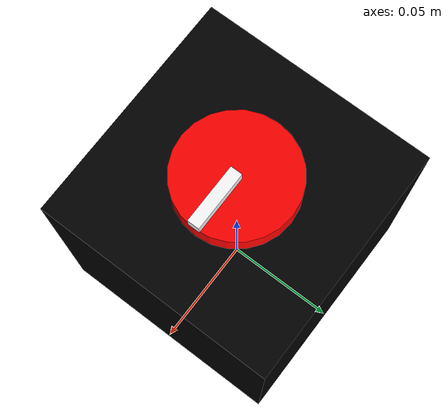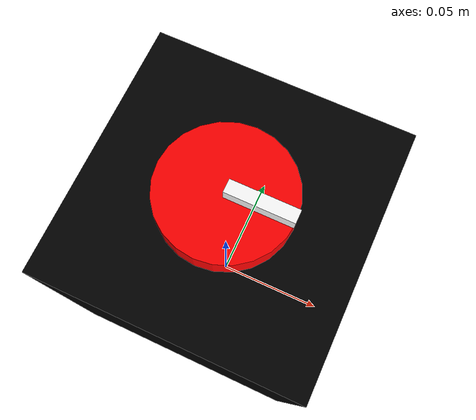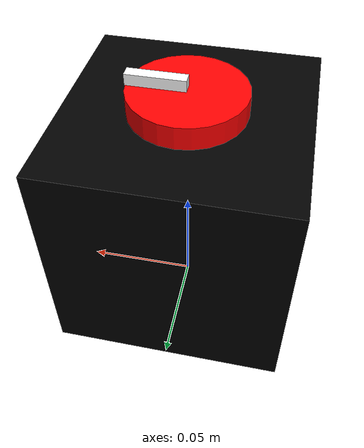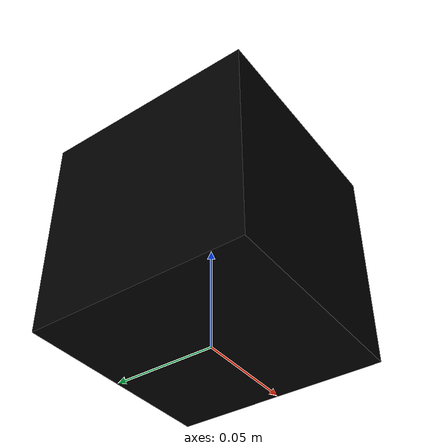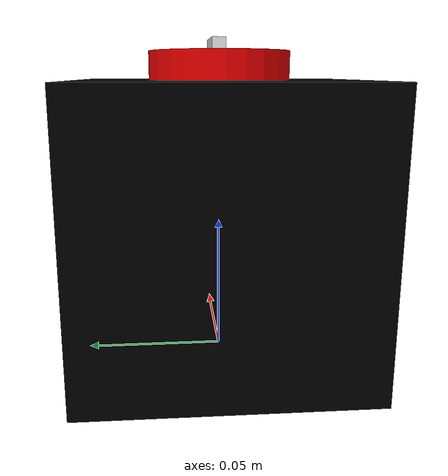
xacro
<?xml version="1.0"?>
<robot xmlns:xacro="http://www.ros.org/wiki/xacro" name="controlled_qube">

  <!-- Henter inn scene-filen fra qube_description og ros2_control-grensesnittet til qube_driver -->
  <xacro:include filename="$(find qube_description)/urdf/qube.urdf.xacro"/>
  <xacro:include filename="$(find qube_driver)/ros2_control/qube_driver.ros2_control.xacro"/>

  <!-- Default values; overskrives av argumentene fra bringup.launch.py -->
  <xacro:arg name="baud_rate"  default="115200"/>
  <xacro:arg name="device"     default="/dev/ttyACM0"/>
  <xacro:arg name="simulation" default="false"/>

  <!-- Kaller qube_driver_ros2_control-makroen med argumentene over -->
  <xacro:qube_driver_ros2_control
    name="qube_driver"
    prefix=""
    baud_rate="$(arg baud_rate)"
    device="$(arg device)"
    simulation="$(arg simulation)"/>

</robot>

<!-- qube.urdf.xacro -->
<!-- Enkel scene som plasserer én QUBE i origo. Brukes til visualisering i RViz. -->
<robot xmlns:xacro="http://www.ros.org/wiki/xacro" name="qube">

  <!-- Henter inn makroen fra makrofilen -->
  <xacro:include filename="$(find qube_description)/urdf/qube.macro.xacro"/>

  <!-- nullpunkt som alt annet er relativt til -->
  <link name="world"/>

  <!-- Kaller makroen med tomt prefix siden vi bare har én QUBE -->
  <xacro:qube prefix=""/>

  <!-- Fester QUBE-en til world i origo -->
  <joint name="world_joint" type="fixed">
    <parent link="world"/>
    <child link="base_link"/>
    <origin xyz="0 0 0" rpy="0 0 0"/>
  </joint>

</robot>

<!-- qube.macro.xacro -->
<robot xmlns:xacro="http://www.ros.org/wiki/xacro">

  <!-- Mål på delene i meter -->
  <xacro:property name="stator_size"       value="0.102" />   <!-- svart boks -->
  <xacro:property name="rotor_radius"      value="0.025" />   <!-- disk radius -->
  <xacro:property name="rotor_length"      value="0.01"  />   <!-- disk tykkelse -->
  <xacro:property name="indicator_length"  value="0.025" />   <!-- viser lengde -->
  <xacro:property name="indicator_width"   value="0.005" />   <!-- viser bredde -->

  <!-- prefix-parameteren gjør at makroen kan brukes flere ganger uten navnekollisjon -->
  <xacro:macro name="qube" params="prefix">

    <link name="${prefix}base_link"/>           <!-- usynlig referansepunkt -->

    <link name="${prefix}stator_link">          <!-- svart boks -->
      <visual>
        <geometry>
          <box size="${stator_size} ${stator_size} ${stator_size}"/>
        </geometry>
        <material name="black">
          <color rgba="0 0 0 1"/>
        </material>
      </visual>
    </link>

    <link name="${prefix}rotor_link">           <!-- rød disk -->
      <visual>
        <geometry>
          <cylinder length="${rotor_length}" radius="${rotor_radius}"/>
        </geometry>
        <material name="red">
          <color rgba="1 0 0 1"/>
        </material>
      </visual>
    </link>

    <link name="${prefix}indicator_link">       <!-- hvit viser -->
      <visual>
        <geometry>
          <box size="${indicator_length} ${indicator_width} ${indicator_width}"/>
        </geometry>
        <material name="white">
          <color rgba="1 1 1 1"/>
        </material>
      </visual>
    </link>

    <!-- Boks plasseres på base_link -->
    <joint name="${prefix}stator_joint" type="fixed">
      <parent link="${prefix}base_link"/>
      <child link="${prefix}stator_link"/>
      <origin xyz="0 0 ${stator_size/2}" rpy="0 0 0"/>
    </joint>

    <!-- Roterende ledd, må hete motor_joint -->
    <joint name="${prefix}motor_joint" type="revolute">
      <parent link="${prefix}stator_link"/>
      <child link="${prefix}rotor_link"/>
      <origin xyz="0 0 ${stator_size/2 + rotor_length/2}" rpy="0 0 0"/>
      <axis xyz="0 0 1"/>
      <limit lower="-3.1416" upper="3.1416" effort="1" velocity="1"/>  <!-- +- pi radianer -->
    </joint>

    <!-- Viseren montert på disken -->
    <joint name="${prefix}indicator_joint" type="fixed">
      <parent link="${prefix}rotor_link"/>
      <child link="${prefix}indicator_link"/>
      <origin xyz="${indicator_length/2} 0 ${rotor_length/2 + indicator_width/2}" rpy="0 0 0"/>
    </joint>

  </xacro:macro>

</robot>
